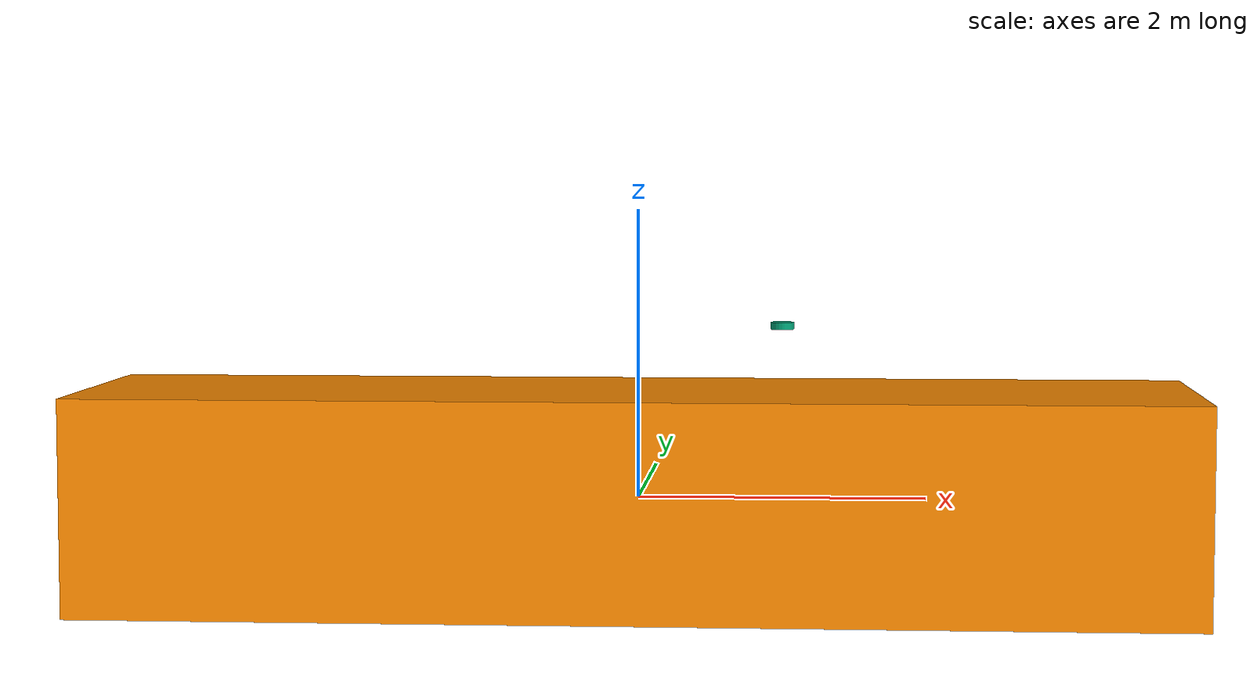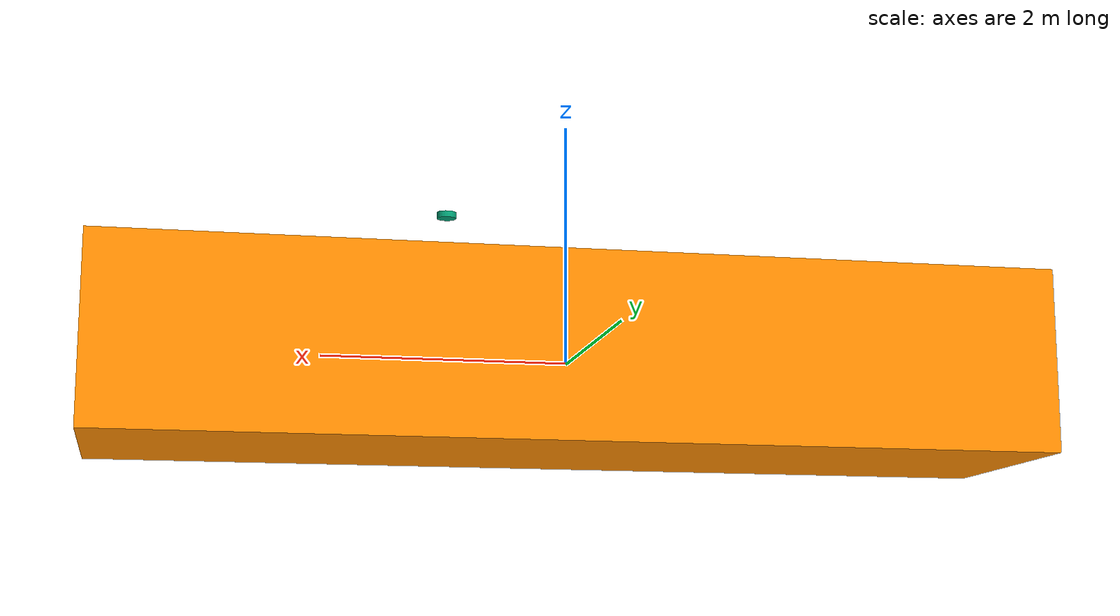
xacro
<?xml version="1.0"?>
<robot xmlns:xacro="http://ros.org/wiki/xacro" name="drix">
  <xacro:arg name="namespace" default="drix"/>
  <xacro:property name="namespace" value="$(arg namespace)" scope="global" />

  <!-- DriX hull: ~7.7m long, ~2.0m wide, ~2.5m tall
       Mass: 2200 kg (measured weight with water in gondola)
       Using placeholder box geometry until meshes are available. -->

  <xacro:property name="hull_length" value="7.7" />
  <xacro:property name="hull_width" value="2.0" />
  <xacro:property name="hull_height" value="1.5" />
  <xacro:property name="hull_mass" value="2200.0" />

  <link name="${namespace}/base_link">
    <inertial>
      <mass value="${hull_mass}" />
      <origin xyz="0 0 0" rpy="0 0 0" />
      <inertia
        ixx="${hull_mass * (hull_width * hull_width + hull_height * hull_height) / 12.0}"
        ixy="0" ixz="0"
        iyy="${hull_mass * (hull_length * hull_length + hull_height * hull_height) / 12.0}"
        iyz="0"
        izz="${hull_mass * (hull_length * hull_length + hull_width * hull_width) / 12.0}" />
    </inertial>
    <visual>
      <geometry>
        <box size="${hull_length} ${hull_width} ${hull_height}" />
      </geometry>
      <material name="drix_hull">
        <color rgba="1.0 0.55 0.0 1.0" />
      </material>
    </visual>
    <collision>
      <geometry>
        <box size="${hull_length} ${hull_width} ${hull_height}" />
      </geometry>
    </collision>
  </link>

  <!-- EK80 sonar (hull-mounted, pointing down) -->
  <link name="${namespace}/ek80">
    <inertial>
      <mass value="2.0" />
      <inertia ixx="0.001" ixy="0" ixz="0" iyy="0.001" iyz="0" izz="0.001" />
    </inertial>
    <visual>
      <geometry>
        <cylinder length="0.0752" radius="0.06"/>
      </geometry>
      <origin rpy="0 1.57075 0" xyz="-0.0376 0 0"/>
    </visual>
    <collision>
      <geometry>
        <cylinder length="0.0752" radius="0.06"/>
      </geometry>
      <origin rpy="0 1.57075 0" xyz="-0.0376 0 0"/>
    </collision>
  </link>

  <joint name="${namespace}/base_to_ek80" type="fixed">
    <parent link="${namespace}/base_link"/>
    <child link="${namespace}/ek80"/>
    <origin rpy="3.14 0 0" xyz="-0.728 -0.131 -0.134" />
  </joint>

  <!-- GPS antenna -->
  <link name="${namespace}/gps">
    <inertial>
      <mass value="0.5" />
      <inertia ixx="0.0001" ixy="0" ixz="0" iyy="0.0001" iyz="0" izz="0.0001" />
    </inertial>
    <visual>
      <geometry>
        <cylinder length="0.05" radius="0.08" />
      </geometry>
    </visual>
    <collision>
      <geometry>
        <cylinder length="0.05" radius="0.08" />
      </geometry>
    </collision>
  </link>

  <joint name="${namespace}/base_to_gps" type="fixed">
    <parent link="${namespace}/base_link"/>
    <child link="${namespace}/gps"/>
    <origin xyz="1.0 0 1.2" rpy="0 0 0" />
  </joint>

  <!-- IMU / heading sensor -->
  <link name="${namespace}/imu">
    <inertial>
      <mass value="1.0" />
      <inertia ixx="0.001" ixy="0" ixz="0" iyy="0.001" iyz="0" izz="0.001" />
    </inertial>
  </link>

  <joint name="${namespace}/base_to_imu" type="fixed">
    <parent link="${namespace}/base_link"/>
    <child link="${namespace}/imu"/>
    <origin xyz="0 0 0" rpy="0 0 0" />
  </joint>

  <!-- Rudder: DriX uses prop + rudder steering
       Rudder distance from CG: 3.4m (from asv_sim config)
       Max rudder angle: 30 degrees -->
  <link name="${namespace}/rudder">
    <inertial>
      <mass value="10.0" />
      <inertia ixx="0.01" ixy="0" ixz="0" iyy="0.01" iyz="0" izz="0.01" />
    </inertial>
    <visual>
      <geometry>
        <box size="0.3 0.02 0.4" />
      </geometry>
      <material name="rudder_material">
        <color rgba="0.5 0.5 0.5 1.0" />
      </material>
    </visual>
    <collision>
      <geometry>
        <box size="0.3 0.02 0.4" />
      </geometry>
    </collision>
  </link>

  <joint name="${namespace}/rudder_joint" type="revolute">
    <parent link="${namespace}/base_link"/>
    <child link="${namespace}/rudder"/>
    <origin xyz="-3.4 0 -0.5" rpy="0 0 0" />
    <axis xyz="0 0 1" />
    <limit lower="${-30.0 * 3.14159 / 180.0}" upper="${30.0 * 3.14159 / 180.0}"
           effort="100" velocity="1.57" />
  </joint>

  <!-- Propeller -->
  <link name="${namespace}/propeller">
    <inertial>
      <mass value="5.0" />
      <inertia ixx="0.01" ixy="0" ixz="0" iyy="0.01" iyz="0" izz="0.02" />
    </inertial>
    <visual>
      <geometry>
        <cylinder length="0.05" radius="0.15" />
      </geometry>
      <origin rpy="0 1.5708 0" xyz="0 0 0" />
      <material name="propeller_material">
        <color rgba="0.3 0.3 0.3 1.0" />
      </material>
    </visual>
    <collision>
      <geometry>
        <cylinder length="0.05" radius="0.15" />
      </geometry>
      <origin rpy="0 1.5708 0" xyz="0 0 0" />
    </collision>
  </link>

  <joint name="${namespace}/propeller_joint" type="continuous">
    <parent link="${namespace}/base_link"/>
    <child link="${namespace}/propeller"/>
    <origin xyz="-3.6 0 -0.5" rpy="0 0 0" />
    <axis xyz="1 0 0" />
  </joint>

</robot>
